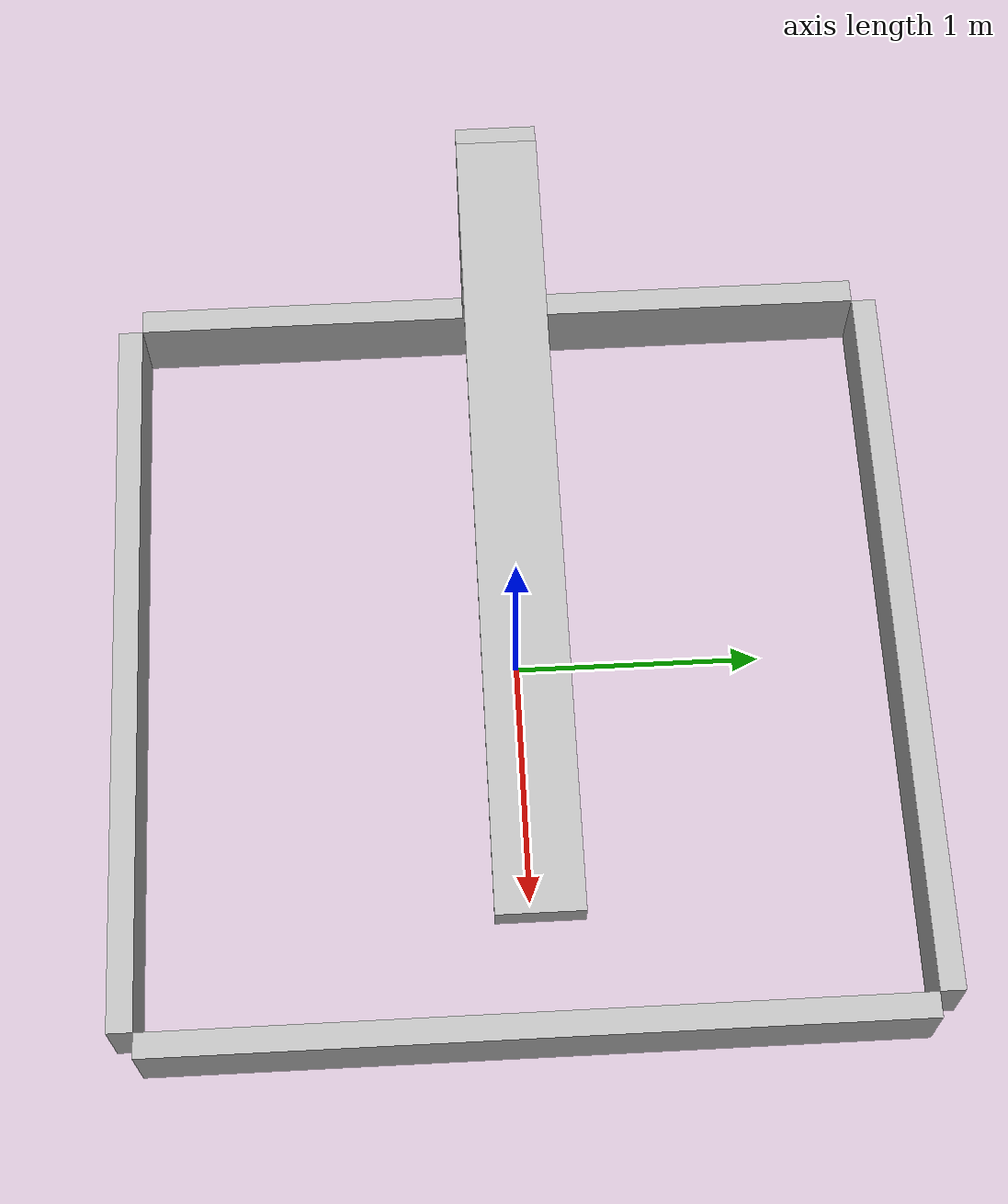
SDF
<?xml version="1.0"?>
<sdf version="1.4">
    <!-- 5ft by 5ft bounding box -->
    <model name="bounding_box">
    <static>true</static>

        <link name="left_wall">
        <pose>0 -1.5748 0.1524 0 0 0</pose>
            <collision name="left_wall_collision">
                <geometry>
                    <box>
                        <size>3.048 0.1016 0.3048</size>
                    </box>
                </geometry>
                <surface>
                    <friction>
                        <ode>
                            <mu>100</mu>
                            <mu2>50</mu2>
                        </ode>
                    </friction>
                </surface>
            </collision>

            <visual name="left_wall_visual">
                <geometry>
                    <box>
                        <size>3.048 0.1016 0.3048</size>
                    </box>
                </geometry>
            </visual>

        </link>

        <link name="right_wall">
        <pose>0 1.5748 0.1524 0 0 0</pose>
            <collision name="right_wall_collision">
                <geometry>
                    <box>
                        <size>3.048 0.1016 0.3048</size>
                    </box>
                </geometry>
                <surface>
                    <friction>
                        <ode>
                            <mu>100</mu>
                            <mu2>50</mu2>
                        </ode>
                    </friction>
                </surface>
            </collision>

            <visual name="right_wall_visual">
                <geometry>
                    <box>
                        <size>3.048 0.1016 0.3048</size>
                    </box>
                </geometry>
            </visual>
        </link>

        <link name="top_wall">
        <pose>1.5748 0 0.1524 0 0 1.5708</pose>
            <collision name="top_wall_collision">
                <geometry>
                    <box>
                        <size>3.048 0.1016 0.3048</size>
                    </box>
                </geometry>
                <surface>
                    <friction>
                        <ode>
                            <mu>100</mu>
                            <mu2>50</mu2>
                        </ode>
                    </friction>
                </surface>
            </collision>

            <visual name="top_wall_visual">
                <geometry>
                    <box>
                        <size>3.048 0.1016 0.3048</size>
                    </box>
                </geometry>
            </visual>
        </link>

        <link name="bottom_wall">
        <pose>-1.5748 0 0.1524 0 0 1.5708</pose>
            <collision name="bottom_wall_collision">
                <geometry>
                    <box>
                        <size>3.048 0.1016 0.3048</size>
                    </box>
                </geometry>
                <surface>
                    <friction>
                        <ode>
                            <mu>100</mu>
                            <mu2>50</mu2>
                        </ode>
                    </friction>
                </surface>
            </collision>

            <visual name="bottom_wall_visual">
                <geometry>
                    <box>
                        <size>3.048 0.1016 0.3048</size>
                    </box>
                </geometry>
            </visual>
        </link>

        <link name="cam_mount_back">
        <pose>-1.5748 0 0.9144 1.5708 1.5708 0</pose>
            <collision name="cam_mount_back_collision">
                <geometry>
                    <box>
                        <size>1.2192 0.1016 0.3048</size>
                    </box>
                </geometry>
                <surface>
                    <friction>
                        <ode>
                            <mu>100</mu>
                            <mu2>50</mu2>
                        </ode>
                    </friction>
                </surface>
            </collision>

            <visual name="cam_mount_back_visual">
                <geometry>
                    <box>
                        <size>1.2192 0.1016 0.3048</size>
                    </box>
                </geometry>
            </visual>
        </link>

	<link name="cam_mount_top">
        <pose>0 0 1.5240 1.5708 0 0</pose>
            <collision name="cam_mount_top_collision">
                <geometry>
                    <box>
                        <size>3.048 0.1016 0.3048</size>
                    </box>
                </geometry>
                <surface>
                    <friction>
                        <ode>
                            <mu>100</mu>
                            <mu2>50</mu2>
                        </ode>
                    </friction>
                </surface>
            </collision>

            <visual name="cam_mount_top_visual">
                <geometry>
                    <box>
                        <size>3.048 0.1016 0.3048</size>
                    </box>
                </geometry>
            </visual>
        </link>

        <link name="camera">
        <pose>0 0 1.4234 1.5708 1.5708 0</pose>
            <collision name="camera_collision">
                <geometry>
                    <box>
                        <size>0.1016 0.1016 0.1016</size>
                    </box>
                </geometry>
            </collision>

            <visual name="camera_visual">
                <geometry>
                    <box>
                        <size>0.1016 0.1016 0.1016</size>
                    </box>
                </geometry>
            </visual>

        <sensor type = "depth" name = "camera">
      	<always_on>0</always_on>
        <updateRate>20</updateRate>

        <camera name="camera">
         	<horizontal_fov>2.26893</horizontal_fov>
          <image>
            <width>640</width>
            <height>480</height>
          </image>
          <clip>
          	<near>0.5</near>
            <far>25</far>
          </clip>
          <distortion>
            <k1>0.0</k1>
            <k2>0.0</k2>
            <k3>0.0</k3>
            <p1>0.0</p1>
            <p2>0.0</p2>
            <center>0.0 0.0</center>
          </distortion>
        </camera>

        <plugin name="camera_controller" filename="libgazebo_ros_openni_kinect.so">
        <alwaysOn>true</alwaysOn>
        <updateRate>0.0</updateRate>
        <cameraName>camera</cameraName>

        <baseline>0.05</baseline>
        <pointCloudCutoff>0.05</pointCloudCutoff>
        <pointCloudCutoffMax>5</pointCloudCutoffMax>

        <imageTopicName>observer/image</imageTopicName>
        <depthImageTopicName>observer/depth/image</depthImageTopicName>
        <cameraInfoTopicName>observer/camera_info</cameraInfoTopicName>
        <depthImageCameraInfoTopicName>observer/depth/camera_info</depthImageCameraInfoTopicName>
        <pointCloudTopicName>observer/point_cloud/cloud_registered</pointCloudTopicName>

        <frameName>camera</frameName>
        <distortionK1>0.0</distortionK1>
        <distortionK2>0.0</distortionK2>
        <distortionK3>0.0</distortionK3>
        <distortionT1>0.0</distortionT1>
        <distortionT2>0.0</distortionT2>

        </plugin>
        </sensor>
        </link>

        <joint name = "left_top" type="fixed">
            <parent>left_wall</parent>
            <child>top_wall</child>
            <pose>0.762 0.0508 0 0 0 0</pose>
        </joint>

        <joint name = "left_bottom" type="fixed">
            <parent>left_wall</parent>
            <child>top_wall</child>
            <pose>-0.762 0.0508 0 0 0 0</pose>
        </joint>

        <joint name = "right_top" type="fixed">
            <parent>right_wall</parent>
            <child>top_wall</child>
            <pose>0.762 -0.0508 0 0 0 0</pose>
        </joint>

        <joint name = "right_bottom" type="fixed">
            <parent>right_wall</parent>
            <child>top_wall</child>
            <pose>-0.762 -0.0508 0 0 0 0</pose>
        </joint>
    </model>
</sdf>
